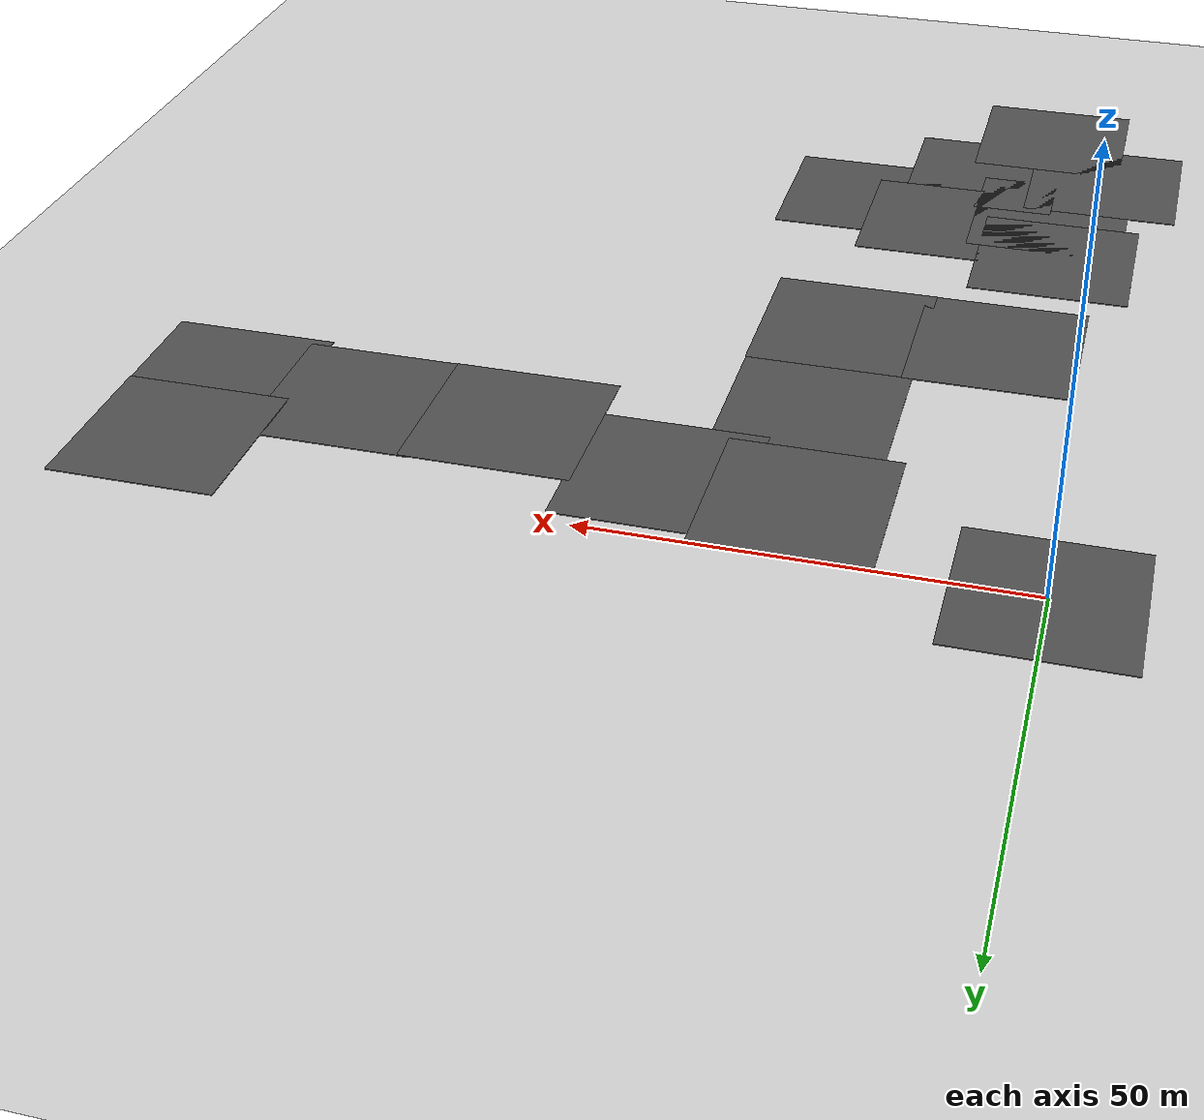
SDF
<sdf version="1.7">
 <world name="default">
  <model name="ground_plane">
   <static>1</static>
   <link name="link">
    <collision name="collision">
     <geometry><plane><normal>0 0 1</normal><size>100 100</size></plane></geometry>
     <surface><friction><ode><mu>100</mu><mu2>50</mu2></ode></friction></surface>
    </collision>
    <visual name="visual">
     <cast_shadows>0</cast_shadows>
     <geometry><plane><normal>0 0 1</normal><size>100 100</size></plane></geometry>
     <material>
      <script><uri>file://media/materials/scripts/gazebo.material</uri><name>Gazebo/Grey</name></script>
     </material>
    </visual>
    <velocity_decay><linear>0</linear><angular>0</angular></velocity_decay>
   </link>
  </model>
  <model name="asphalt_plane">
   <static>1</static>
   <link name="link">
    <collision name="collision"><geometry><box><size>20 20 0.1</size></box></geometry></collision>
    <visual name="visual">
     <cast_shadows>0</cast_shadows>
     <geometry><box><size>20 20 0.1</size></box></geometry>
     <material>
      <script>
       <uri>model://asphalt_plane/materials/scripts</uri>
       <uri>model://asphalt_plane/materials/textures</uri>
       <name>vrc/asphalt</name>
      </script>
     </material>
    </visual>
    <velocity_decay><linear>0</linear><angular>0</angular></velocity_decay>
   </link>
   <pose>0.076733 -0.110379 0 0 -0 0</pose>
  </model>
  <model name="asphalt_plane_clone_clone">
   <static>1</static>
   <link name="link">
    <collision name="collision"><geometry><box><size>20 20 0.1</size></box></geometry></collision>
    <visual name="visual">
     <cast_shadows>0</cast_shadows>
     <geometry><box><size>20 20 0.1</size></box></geometry>
     <material>
      <script>
       <uri>model://asphalt_plane/materials/scripts</uri>
       <uri>model://asphalt_plane/materials/textures</uri>
       <name>vrc/asphalt</name>
      </script>
     </material>
    </visual>
    <velocity_decay><linear>0</linear><angular>0</angular></velocity_decay>
   </link>
   <pose>27.6902 -10.3708 0 0 -0 0</pose>
  </model>
  <model name="asphalt_plane_clone_clone_1">
   <static>1</static>
   <link name="link">
    <collision name="collision"><geometry><box><size>20 20 0.1</size></box></geometry></collision>
    <visual name="visual">
     <cast_shadows>0</cast_shadows>
     <geometry><box><size>20 20 0.1</size></box></geometry>
     <material>
      <script>
       <uri>model://asphalt_plane/materials/scripts</uri>
       <uri>model://asphalt_plane/materials/textures</uri>
       <name>vrc/asphalt</name>
      </script>
     </material>
    </visual>
    <velocity_decay><linear>0</linear><angular>0</angular></velocity_decay>
   </link>
   <pose>43.2648 -11.6179 0 0 -0 0</pose>
  </model>
  <model name="asphalt_plane_clone_clone_5">
   <static>1</static>
   <link name="link">
    <collision name="collision"><geometry><box><size>20 20 0.1</size></box></geometry></collision>
    <visual name="visual">
     <cast_shadows>0</cast_shadows>
     <geometry><box><size>20 20 0.1</size></box></geometry>
     <material>
      <script>
       <uri>model://asphalt_plane/materials/scripts</uri>
       <uri>model://asphalt_plane/materials/textures</uri>
       <name>vrc/asphalt</name>
      </script>
     </material>
    </visual>
    <velocity_decay><linear>0</linear><angular>0</angular></velocity_decay>
   </link>
   <pose>62.4965 -17.8442 0 0 -0 0</pose>
  </model>
  <model name="asphalt_plane_clone_clone_6">
   <static>1</static>
   <link name="link">
    <collision name="collision"><geometry><box><size>20 20 0.1</size></box></geometry></collision>
    <visual name="visual">
     <cast_shadows>0</cast_shadows>
     <geometry><box><size>20 20 0.1</size></box></geometry>
     <material>
      <script>
       <uri>model://asphalt_plane/materials/scripts</uri>
       <uri>model://asphalt_plane/materials/textures</uri>
       <name>vrc/asphalt</name>
      </script>
     </material>
    </visual>
    <velocity_decay><linear>0</linear><angular>0</angular></velocity_decay>
   </link>
   <pose>81.0953 -17.7428 0 0 -0 0</pose>
  </model>
  <model name="asphalt_plane_clone_clone_7">
   <static>1</static>
   <link name="link">
    <collision name="collision"><geometry><box><size>20 20 0.1</size></box></geometry></collision>
    <visual name="visual">
     <cast_shadows>0</cast_shadows>
     <geometry><box><size>20 20 0.1</size></box></geometry>
     <material>
      <script>
       <uri>model://asphalt_plane/materials/scripts</uri>
       <uri>model://asphalt_plane/materials/textures</uri>
       <name>vrc/asphalt</name>
      </script>
     </material>
    </visual>
    <velocity_decay><linear>0</linear><angular>0</angular></velocity_decay>
   </link>
   <pose>98.7551 -5.55585 0 0 -0 0</pose>
  </model>
  <model name="asphalt_plane_clone_clone_11">
   <static>1</static>
   <link name="link">
    <collision name="collision"><geometry><box><size>20 20 0.1</size></box></geometry></collision>
    <visual name="visual">
     <cast_shadows>0</cast_shadows>
     <geometry><box><size>20 20 0.1</size></box></geometry>
     <material>
      <script>
       <uri>model://asphalt_plane/materials/scripts</uri>
       <uri>model://asphalt_plane/materials/textures</uri>
       <name>vrc/asphalt</name>
      </script>
     </material>
    </visual>
    <velocity_decay><linear>0</linear><angular>0</angular></velocity_decay>
   </link>
   <pose>98.6514 -18.728 0 0 -0 0</pose>
  </model>
  <model name="asphalt_plane_clone_clone_clone">
   <static>1</static>
   <link name="link">
    <collision name="collision"><geometry><box><size>20 20 0.1</size></box></geometry></collision>
    <visual name="visual">
     <cast_shadows>0</cast_shadows>
     <geometry><box><size>20 20 0.1</size></box></geometry>
     <material>
      <script>
       <uri>model://asphalt_plane/materials/scripts</uri>
       <uri>model://asphalt_plane/materials/textures</uri>
       <name>vrc/asphalt</name>
      </script>
     </material>
    </visual>
    <velocity_decay><linear>0</linear><angular>0</angular></velocity_decay>
   </link>
   <pose>29.8826 -29.0227 0 0 -0 0</pose>
  </model>
  <model name="asphalt_plane_clone_clone_clone_clone">
   <static>1</static>
   <link name="link">
    <collision name="collision"><geometry><box><size>20 20 0.1</size></box></geometry></collision>
    <visual name="visual">
     <cast_shadows>0</cast_shadows>
     <geometry><box><size>20 20 0.1</size></box></geometry>
     <material>
      <script>
       <uri>model://asphalt_plane/materials/scripts</uri>
       <uri>model://asphalt_plane/materials/textures</uri>
       <name>vrc/asphalt</name>
      </script>
     </material>
    </visual>
    <velocity_decay><linear>0</linear><angular>0</angular></velocity_decay>
   </link>
   <pose>29.9757 -48.0445 0 0 -0 0</pose>
  </model>
  <model name="asphalt_plane_clone_clone_clone_clone_0">
   <static>1</static>
   <link name="link">
    <collision name="collision"><geometry><box><size>20 20 0.1</size></box></geometry></collision>
    <visual name="visual">
     <cast_shadows>0</cast_shadows>
     <geometry><box><size>20 20 0.1</size></box></geometry>
     <material>
      <script>
       <uri>model://asphalt_plane/materials/scripts</uri>
       <uri>model://asphalt_plane/materials/textures</uri>
       <name>vrc/asphalt</name>
      </script>
     </material>
    </visual>
    <velocity_decay><linear>0</linear><angular>0</angular></velocity_decay>
   </link>
   <pose>11.1927 -47.9794 0 0 -0 0</pose>
  </model>
  <model name="asphalt_plane_clone_clone_clone_clone_3_clone">
   <static>1</static>
   <link name="link">
    <collision name="collision"><geometry><box><size>20 20 0.1</size></box></geometry></collision>
    <visual name="visual">
     <cast_shadows>0</cast_shadows>
     <geometry><box><size>20 20 0.1</size></box></geometry>
     <material>
      <script>
       <uri>model://asphalt_plane/materials/scripts</uri>
       <uri>model://asphalt_plane/materials/textures</uri>
       <name>vrc/asphalt</name>
      </script>
     </material>
    </visual>
    <velocity_decay><linear>0</linear><angular>0</angular></velocity_decay>
   </link>
   <pose>2.42108 -95.3834 0 0 -0 0</pose>
  </model>
  <model name="asphalt_plane_clone_clone_clone_clone_3_clone_0">
   <static>1</static>
   <link name="link">
    <collision name="collision"><geometry><box><size>20 20 0.1</size></box></geometry></collision>
    <visual name="visual">
     <cast_shadows>0</cast_shadows>
     <geometry><box><size>20 20 0.1</size></box></geometry>
     <material>
      <script>
       <uri>model://asphalt_plane/materials/scripts</uri>
       <uri>model://asphalt_plane/materials/textures</uri>
       <name>vrc/asphalt</name>
      </script>
     </material>
    </visual>
    <velocity_decay><linear>0</linear><angular>0</angular></velocity_decay>
   </link>
   <pose>18.7435 -94.1437 0 0 -0 0</pose>
  </model>
  <model name="asphalt_plane_clone_clone_clone_clone_3_clone_1">
   <static>1</static>
   <link name="link">
    <collision name="collision"><geometry><box><size>20 20 0.1</size></box></geometry></collision>
    <visual name="visual">
     <cast_shadows>0</cast_shadows>
     <geometry><box><size>20 20 0.1</size></box></geometry>
     <material>
      <script>
       <uri>model://asphalt_plane/materials/scripts</uri>
       <uri>model://asphalt_plane/materials/textures</uri>
       <name>vrc/asphalt</name>
      </script>
     </material>
    </visual>
    <velocity_decay><linear>0</linear><angular>0</angular></velocity_decay>
   </link>
   <pose>22.5052 -78.8935 0 0 -0 0</pose>
  </model>
  <model name="asphalt_plane_clone_clone_clone_clone_3_clone_2">
   <static>1</static>
   <link name="link">
    <collision name="collision"><geometry><box><size>20 20 0.1</size></box></geometry></collision>
    <visual name="visual">
     <cast_shadows>0</cast_shadows>
     <geometry><box><size>20 20 0.1</size></box></geometry>
     <material>
      <script>
       <uri>model://asphalt_plane/materials/scripts</uri>
       <uri>model://asphalt_plane/materials/textures</uri>
       <name>vrc/asphalt</name>
      </script>
     </material>
    </visual>
    <velocity_decay><linear>0</linear><angular>0</angular></velocity_decay>
   </link>
   <pose>6.79189 -71.5678 0 0 -0 0</pose>
  </model>
  <model name="asphalt_plane_clone_clone_clone_clone_3_clone_clone">
   <static>1</static>
   <link name="link">
    <collision name="collision"><geometry><box><size>20 20 0.1</size></box></geometry></collision>
    <visual name="visual">
     <cast_shadows>0</cast_shadows>
     <geometry><box><size>20 20 0.1</size></box></geometry>
     <material>
      <script>
       <uri>model://asphalt_plane/materials/scripts</uri>
       <uri>model://asphalt_plane/materials/textures</uri>
       <name>vrc/asphalt</name>
      </script>
     </material>
    </visual>
    <velocity_decay><linear>0</linear><angular>0</angular></velocity_decay>
   </link>
   <pose>8.56186 -83.2765 0 0 -0 0</pose>
  </model>
  <model name="asphalt_plane_clone_clone_clone_clone_3_clone_1_clone">
   <static>1</static>
   <link name="link">
    <collision name="collision"><geometry><box><size>20 20 0.1</size></box></geometry></collision>
    <visual name="visual">
     <cast_shadows>0</cast_shadows>
     <geometry><box><size>20 20 0.1</size></box></geometry>
     <material>
      <script>
       <uri>model://asphalt_plane/materials/scripts</uri>
       <uri>model://asphalt_plane/materials/textures</uri>
       <name>vrc/asphalt</name>
      </script>
     </material>
    </visual>
    <velocity_decay><linear>0</linear><angular>0</angular></velocity_decay>
   </link>
   <pose>34.2018 -83.6474 0 0 -0 0</pose>
  </model>
  <model name="asphalt_plane_clone_clone_clone_clone_3_clone_1_clone_0">
   <static>1</static>
   <link name="link">
    <collision name="collision"><geometry><box><size>20 20 0.1</size></box></geometry></collision>
    <visual name="visual">
     <cast_shadows>0</cast_shadows>
     <geometry><box><size>20 20 0.1</size></box></geometry>
     <material>
      <script>
       <uri>model://asphalt_plane/materials/scripts</uri>
       <uri>model://asphalt_plane/materials/textures</uri>
       <name>vrc/asphalt</name>
      </script>
     </material>
    </visual>
    <velocity_decay><linear>0</linear><angular>0</angular></velocity_decay>
   </link>
   <pose>10.6961 -107.688 0 0 -0 0</pose>
  </model>
 </world>
</sdf>
